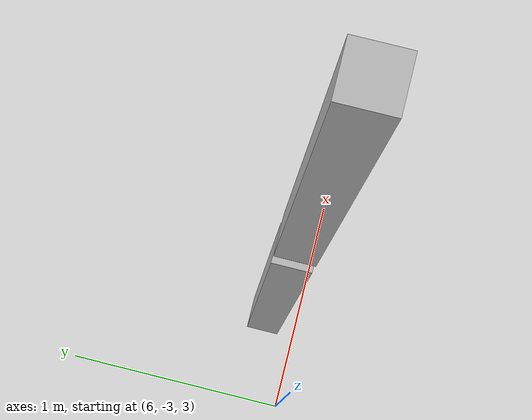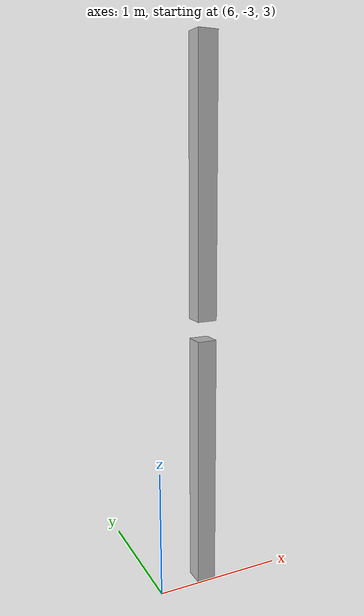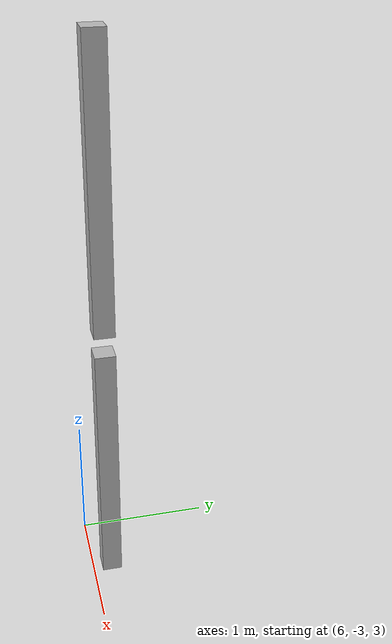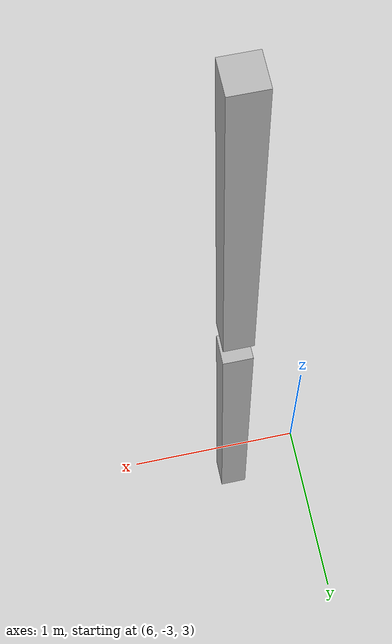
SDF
<sdf version="1.7">
 <world name="default">
  <model name="orthogonal_747_2.000.15_TS">
   <static>1</static>
   <link name="z_link_3_1_6">
    <inertial>
     <mass>1</mass>
     <inertia>
      <ixx>0.166667</ixx>
      <ixy>0</ixy>
      <ixz>0</ixz>
      <iyy>0.166667</iyy>
      <iyz>0</iyz>
      <izz>0.166667</izz>
     </inertia>
    </inertial>
    <pose>12.9 2.15 6.45 0 -0 0</pose>
    <visual name="visual_0">
     <laser_retro>2920</laser_retro>
     <geometry><box><size>0.15 1e-06 2</size></box></geometry>
     <material>
      <script><name>Gazebo/Grey</name><uri>file://media/materials/scripts/gazebo.material</uri></script>
      <shader type="pixel"><normal_map>__default__</normal_map></shader>
      <ambient>0.678 0.498 0.659 1</ambient>
      <diffuse>0.7 0.7 0.7 1</diffuse>
      <specular>0.01 0.01 0.01 1</specular>
      <emissive>0 0 0 1</emissive>
     </material>
     <pose>0 -0.075 0 0 -0 0</pose>
     <transparency>1</transparency>
    </visual>
    <visual name="visual_1">
     <laser_retro>2921</laser_retro>
     <geometry><box><size>0.15 1e-06 2</size></box></geometry>
     <material>
      <script><name>Gazebo/Grey</name><uri>file://media/materials/scripts/gazebo.material</uri></script>
      <shader type="pixel"><normal_map>__default__</normal_map></shader>
      <ambient>0.447 0.624 0.812 1</ambient>
      <diffuse>0.7 0.7 0.7 1</diffuse>
      <specular>0.01 0.01 0.01 1</specular>
      <emissive>0 0 0 1</emissive>
     </material>
     <pose>0 0.075 0 0 -0 0</pose>
     <transparency>1</transparency>
    </visual>
    <visual name="visual_2">
     <laser_retro>2922</laser_retro>
     <geometry><box><size>0.15 0.15 1e-06</size></box></geometry>
     <material>
      <script><name>Gazebo/Grey</name><uri>file://media/materials/scripts/gazebo.material</uri></script>
      <shader type="pixel"><normal_map>__default__</normal_map></shader>
      <ambient>0.988 0.686 0.243 1</ambient>
      <diffuse>0.7 0.7 0.7 1</diffuse>
      <specular>0.01 0.01 0.01 1</specular>
      <emissive>0 0 0 1</emissive>
     </material>
     <pose>0 0 -1 0 -0 0</pose>
     <transparency>1</transparency>
    </visual>
    <visual name="visual_3">
     <laser_retro>2923</laser_retro>
     <geometry><box><size>1e-06 0.15 2</size></box></geometry>
     <material>
      <script><name>Gazebo/Grey</name><uri>file://media/materials/scripts/gazebo.material</uri></script>
      <shader type="pixel"><normal_map>__default__</normal_map></shader>
      <ambient>0.988 0.914 0.31 1</ambient>
      <diffuse>0.7 0.7 0.7 1</diffuse>
      <specular>0.01 0.01 0.01 1</specular>
      <emissive>0 0 0 1</emissive>
     </material>
     <pose>0.075 0 0 0 -0 0</pose>
     <transparency>1</transparency>
    </visual>
    <visual name="visual_4">
     <laser_retro>2924</laser_retro>
     <geometry><box><size>0.15 0.15 1e-06</size></box></geometry>
     <material>
      <script><name>Gazebo/Grey</name><uri>file://media/materials/scripts/gazebo.material</uri></script>
      <shader type="pixel"><normal_map>__default__</normal_map></shader>
      <ambient>0.937 0.161 0.161 1</ambient>
      <diffuse>0.7 0.7 0.7 1</diffuse>
      <specular>0.01 0.01 0.01 1</specular>
      <emissive>0 0 0 1</emissive>
     </material>
     <pose>0 0 1 0 -0 0</pose>
     <transparency>1</transparency>
    </visual>
    <visual name="visual_5">
     <laser_retro>2925</laser_retro>
     <geometry><box><size>1e-06 0.15 2</size></box></geometry>
     <material>
      <script><name>Gazebo/Grey</name><uri>file://media/materials/scripts/gazebo.material</uri></script>
      <shader type="pixel"><normal_map>__default__</normal_map></shader>
      <ambient>0.541 0.886 0.204 1</ambient>
      <diffuse>0.7 0.7 0.7 1</diffuse>
      <specular>0.01 0.01 0.01 1</specular>
      <emissive>0 0 0 1</emissive>
     </material>
     <pose>-0.075 0 0 0 -0 0</pose>
     <transparency>1</transparency>
    </visual>
    <visual name="visual_texture">
     <geometry><box><size>0.149985 0.149985 1.9998</size></box></geometry>
     <material>
      <script>
       <uri>model://BASE_MODELS/simple_block_v2_textured/materials/scripts</uri>
       <uri>model://BASE_MODELS/simple_block_v2_textured/materials/textures</uri>
       <name>metal</name>
      </script>
     </material>
     <laser_retro>2926</laser_retro>
    </visual>
    <collision name="collision">
     <geometry><box><size>0.15 0.15 2</size></box></geometry>
     <surface>
      <friction>
       <ode><mu>1</mu><mu2>1</mu2><fdir1>0 0 0</fdir1><slip1>0</slip1><slip2>0</slip2></ode>
       <torsional>
        <coefficient>1</coefficient>
        <patch_radius>0</patch_radius>
        <surface_radius>0</surface_radius>
        <use_patch_radius>1</use_patch_radius>
        <ode><slip>0</slip></ode>
       </torsional>
      </friction>
      <bounce><restitution_coefficient>0</restitution_coefficient><threshold>1e+06</threshold></bounce>
      <contact>
       <collide_without_contact>0</collide_without_contact>
       <collide_without_contact_bitmask>1</collide_without_contact_bitmask>
       <collide_bitmask>1</collide_bitmask>
       <ode>
        <soft_cfm>0</soft_cfm>
        <soft_erp>0.2</soft_erp>
        <kp>1e+13</kp>
        <kd>1</kd>
        <max_vel>0.01</max_vel>
        <min_depth>0</min_depth>
       </ode>
       <bullet>
        <split_impulse>1</split_impulse>
        <split_impulse_penetration_threshold>-0.01</split_impulse_penetration_threshold>
        <soft_cfm>0</soft_cfm>
        <soft_erp>0.2</soft_erp>
        <kp>1e+13</kp>
        <kd>1</kd>
       </bullet>
      </contact>
     </surface>
    </collision>
   </link>
   <link name="z_link_4_1_6">
    <inertial>
     <mass>1</mass>
     <inertia>
      <ixx>0.166667</ixx>
      <ixy>0</ixy>
      <ixz>0</ixz>
      <iyy>0.166667</iyy>
      <iyz>0</iyz>
      <izz>0.166667</izz>
     </inertia>
    </inertial>
    <pose>12.9 2.15 8.6 0 -0 0</pose>
    <visual name="visual_0">
     <laser_retro>3823</laser_retro>
     <geometry><box><size>0.15 1e-06 2</size></box></geometry>
     <material>
      <script><name>Gazebo/Grey</name><uri>file://media/materials/scripts/gazebo.material</uri></script>
      <shader type="pixel"><normal_map>__default__</normal_map></shader>
      <ambient>0.678 0.498 0.659 1</ambient>
      <diffuse>0.7 0.7 0.7 1</diffuse>
      <specular>0.01 0.01 0.01 1</specular>
      <emissive>0 0 0 1</emissive>
     </material>
     <pose>0 -0.075 0 0 -0 0</pose>
     <transparency>1</transparency>
    </visual>
    <visual name="visual_1">
     <laser_retro>3824</laser_retro>
     <geometry><box><size>0.15 1e-06 2</size></box></geometry>
     <material>
      <script><name>Gazebo/Grey</name><uri>file://media/materials/scripts/gazebo.material</uri></script>
      <shader type="pixel"><normal_map>__default__</normal_map></shader>
      <ambient>0.447 0.624 0.812 1</ambient>
      <diffuse>0.7 0.7 0.7 1</diffuse>
      <specular>0.01 0.01 0.01 1</specular>
      <emissive>0 0 0 1</emissive>
     </material>
     <pose>0 0.075 0 0 -0 0</pose>
     <transparency>1</transparency>
    </visual>
    <visual name="visual_2">
     <laser_retro>3825</laser_retro>
     <geometry><box><size>0.15 0.15 1e-06</size></box></geometry>
     <material>
      <script><name>Gazebo/Grey</name><uri>file://media/materials/scripts/gazebo.material</uri></script>
      <shader type="pixel"><normal_map>__default__</normal_map></shader>
      <ambient>0.988 0.686 0.243 1</ambient>
      <diffuse>0.7 0.7 0.7 1</diffuse>
      <specular>0.01 0.01 0.01 1</specular>
      <emissive>0 0 0 1</emissive>
     </material>
     <pose>0 0 -1 0 -0 0</pose>
     <transparency>1</transparency>
    </visual>
    <visual name="visual_3">
     <laser_retro>3826</laser_retro>
     <geometry><box><size>1e-06 0.15 2</size></box></geometry>
     <material>
      <script><name>Gazebo/Grey</name><uri>file://media/materials/scripts/gazebo.material</uri></script>
      <shader type="pixel"><normal_map>__default__</normal_map></shader>
      <ambient>0.988 0.914 0.31 1</ambient>
      <diffuse>0.7 0.7 0.7 1</diffuse>
      <specular>0.01 0.01 0.01 1</specular>
      <emissive>0 0 0 1</emissive>
     </material>
     <pose>0.075 0 0 0 -0 0</pose>
     <transparency>1</transparency>
    </visual>
    <visual name="visual_4">
     <laser_retro>3827</laser_retro>
     <geometry><box><size>0.15 0.15 1e-06</size></box></geometry>
     <material>
      <script><name>Gazebo/Grey</name><uri>file://media/materials/scripts/gazebo.material</uri></script>
      <shader type="pixel"><normal_map>__default__</normal_map></shader>
      <ambient>0.937 0.161 0.161 1</ambient>
      <diffuse>0.7 0.7 0.7 1</diffuse>
      <specular>0.01 0.01 0.01 1</specular>
      <emissive>0 0 0 1</emissive>
     </material>
     <pose>0 0 1 0 -0 0</pose>
     <transparency>1</transparency>
    </visual>
    <visual name="visual_5">
     <laser_retro>3828</laser_retro>
     <geometry><box><size>1e-06 0.15 2</size></box></geometry>
     <material>
      <script><name>Gazebo/Grey</name><uri>file://media/materials/scripts/gazebo.material</uri></script>
      <shader type="pixel"><normal_map>__default__</normal_map></shader>
      <ambient>0.541 0.886 0.204 1</ambient>
      <diffuse>0.7 0.7 0.7 1</diffuse>
      <specular>0.01 0.01 0.01 1</specular>
      <emissive>0 0 0 1</emissive>
     </material>
     <pose>-0.075 0 0 0 -0 0</pose>
     <transparency>1</transparency>
    </visual>
    <visual name="visual_texture">
     <geometry><box><size>0.149985 0.149985 1.9998</size></box></geometry>
     <material>
      <script>
       <uri>model://BASE_MODELS/simple_block_v2_textured/materials/scripts</uri>
       <uri>model://BASE_MODELS/simple_block_v2_textured/materials/textures</uri>
       <name>metal</name>
      </script>
     </material>
     <laser_retro>3829</laser_retro>
    </visual>
    <collision name="collision">
     <geometry><box><size>0.15 0.15 2</size></box></geometry>
     <surface>
      <friction>
       <ode><mu>1</mu><mu2>1</mu2><fdir1>0 0 0</fdir1><slip1>0</slip1><slip2>0</slip2></ode>
       <torsional>
        <coefficient>1</coefficient>
        <patch_radius>0</patch_radius>
        <surface_radius>0</surface_radius>
        <use_patch_radius>1</use_patch_radius>
        <ode><slip>0</slip></ode>
       </torsional>
      </friction>
      <bounce><restitution_coefficient>0</restitution_coefficient><threshold>1e+06</threshold></bounce>
      <contact>
       <collide_without_contact>0</collide_without_contact>
       <collide_without_contact_bitmask>1</collide_without_contact_bitmask>
       <collide_bitmask>1</collide_bitmask>
       <ode>
        <soft_cfm>0</soft_cfm>
        <soft_erp>0.2</soft_erp>
        <kp>1e+13</kp>
        <kd>1</kd>
        <max_vel>0.01</max_vel>
        <min_depth>0</min_depth>
       </ode>
       <bullet>
        <split_impulse>1</split_impulse>
        <split_impulse_penetration_threshold>-0.01</split_impulse_penetration_threshold>
        <soft_cfm>0</soft_cfm>
        <soft_erp>0.2</soft_erp>
        <kp>1e+13</kp>
        <kd>1</kd>
       </bullet>
      </contact>
     </surface>
    </collision>
   </link>
   <pose>-6.47624 -5 -2.5 0 -0 0</pose>
  </model>
 </world>
</sdf>
